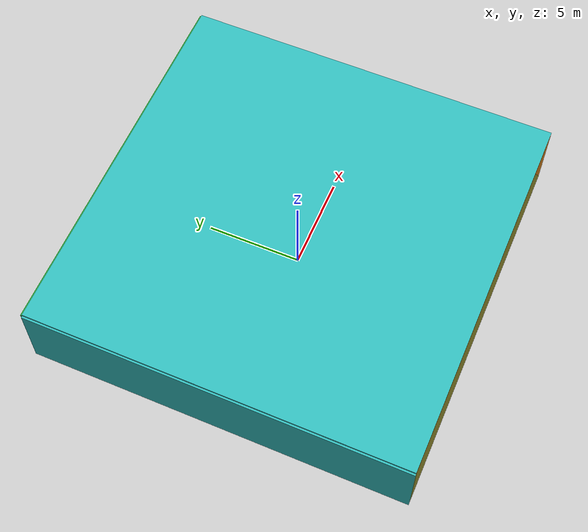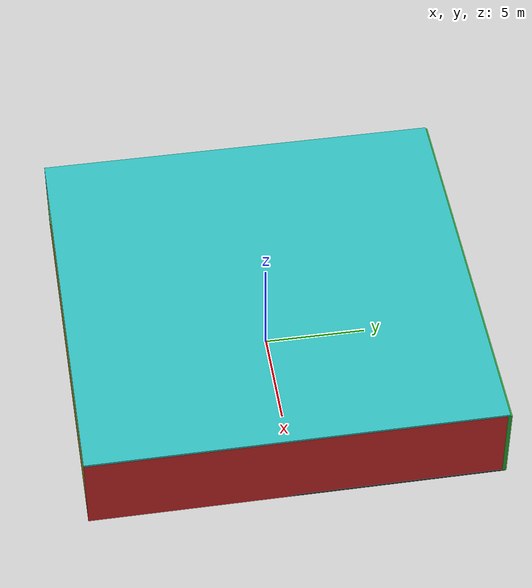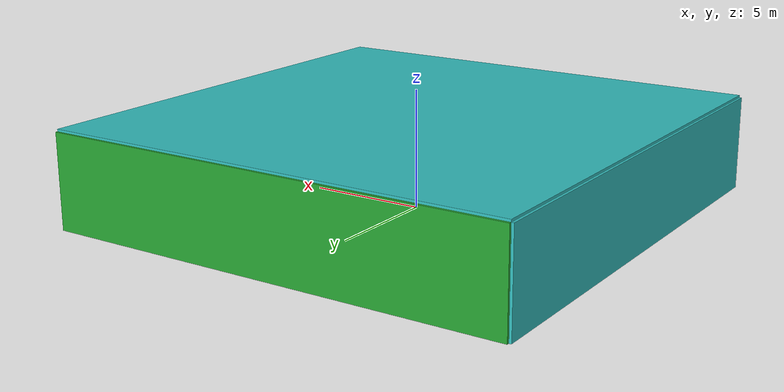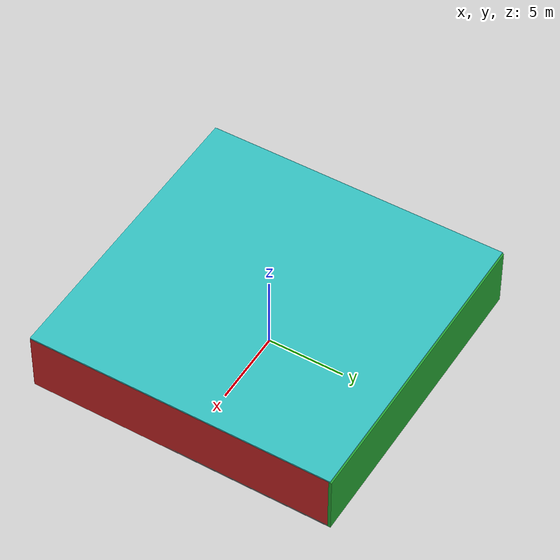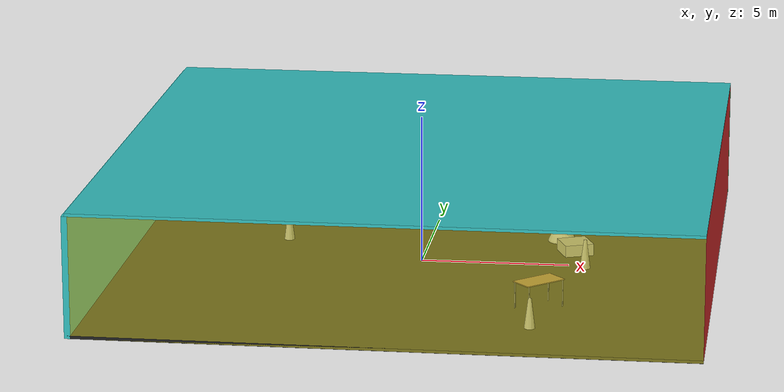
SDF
<sdf version="1.4">
 <world name="default">
  <physics type="ode">
   <max_step_size>0.001</max_step_size>
   <real_time_factor>1</real_time_factor>
   <real_time_update_rate>1000</real_time_update_rate>
   <gravity>0 0 -9.8</gravity>
  </physics>
  <scene><ambient>0.4 0.4 0.4 1</ambient><background>0.7 0.7 0.7 1</background><shadows>1</shadows></scene>
  <model name="Surrounding">
   <static>1</static>
   <link name="Ceiling">
    <collision name="Ceiling_Collision"><geometry><box><size>20 20 0.1</size></box></geometry></collision>
    <visual name="Ceiling_Visual">
     <geometry><box><size>20 20 0.1</size></box></geometry>
     <material>
      <script>
       <uri>file://media/materials/scripts/gazebo.material</uri>
       <name>Gazebo/TurquoiseGlowOutline</name>
      </script>
     </material>
    </visual>
    <pose>0 0 4.05 0 0 0</pose>
   </link>
   <link name="Wall_South">
    <collision name="Wall_South_Collision">
     <geometry><box><size>20 0 4</size></box></geometry>
     <pose>0 0 2 0 -0 0</pose>
    </collision>
    <visual name="Wall_South_Visual">
     <pose>0 0 2 0 -0 0</pose>
     <geometry><box><size>20 0 4</size></box></geometry>
     <material>
      <script>
       <uri>file://media/materials/scripts/gazebo.material</uri>
       <name>Gazebo/YellowTransparent</name>
      </script>
     </material>
    </visual>
    <velocity_decay><linear>0</linear><angular>0</angular></velocity_decay>
    <pose>0 -10 0 0 -0 0</pose>
   </link>
   <link name="Wall_East">
    <collision name="Wall_21_Collision">
     <geometry><box><size>20 0 4</size></box></geometry>
     <pose>0 0 2 0 -0 0</pose>
    </collision>
    <visual name="Wall_21_Visual">
     <pose>0 0 2 0 -0 0</pose>
     <geometry><box><size>20 0 4</size></box></geometry>
     <material>
      <script><uri>file://media/materials/scripts/gazebo.material</uri><name>Gazebo/RedGlow</name></script>
     </material>
    </visual>
    <velocity_decay><linear>0</linear><angular>0</angular></velocity_decay>
    <pose>10 0 0 0 -0 1.5708</pose>
   </link>
   <link name="Wall_North">
    <collision name="Wall_22_Collision">
     <geometry><box><size>20 0.2 4</size></box></geometry>
     <pose>0 0 2 0 -0 0</pose>
    </collision>
    <visual name="Wall_22_Visual">
     <pose>0 0 2 0 -0 0</pose>
     <geometry><box><size>20 0.2 4</size></box></geometry>
     <material>
      <script><uri>file://media/materials/scripts/gazebo.material</uri><name>Gazebo/Green</name></script>
     </material>
    </visual>
    <velocity_decay><linear>0</linear><angular>0</angular></velocity_decay>
    <pose>0 10 0 0 -0 0</pose>
   </link>
   <link name="Wall_West">
    <collision name="Wall_23_Collision">
     <geometry><box><size>20 0.2 4</size></box></geometry>
     <pose>0 0 2 0 -0 0</pose>
    </collision>
    <visual name="Wall_23_Visual">
     <pose>0 0 2 0 -0 0</pose>
     <geometry><box><size>20 0.2 4</size></box></geometry>
     <material>
      <script><uri>file://media/materials/scripts/gazebo.material</uri><name>Gazebo/TurquoiseGlow</name></script>
     </material>
    </visual>
    <velocity_decay><linear>0</linear><angular>0</angular></velocity_decay>
    <pose>-10 0 0 0 0 -1.5708</pose>
   </link>
   <link name="Ground_link">
    <collision name="collision">
     <pose>0 0 .05 0 -0 0</pose>
     <geometry><box><size>20 20 0.1</size></box></geometry>
    </collision>
    <visual name="visual">
     <pose>0 0 .05 0 -0 0</pose>
     <geometry><box><size>20 20 0.1</size></box></geometry>
     <material>
      <script><uri>file://media/materials/scripts/gazebo.material</uri><name>Gazebo/FlatBlack</name></script>
     </material>
    </visual>
   </link>
   <static>1</static>
  </model>
  <spherical_coordinates>
   <surface_model>EARTH_WGS84</surface_model>
   <latitude_deg>0</latitude_deg>
   <longitude_deg>0</longitude_deg>
   <elevation>0</elevation>
   <heading_deg>0</heading_deg>
  </spherical_coordinates>
  <light name="lightball_0" type="diffuse">
   <diffuse>0.8 0.8 0.8 1</diffuse>
   <specular>0.2 0.2 0.2 1</specular>
   <attenuation>
    <range>100</range>
    <constant>0.7</constant>
    <linear>0.01</linear>
    <quadratic>0.001</quadratic>
   </attenuation>
   <direction>-0.5 0.1 -0.9</direction>
   <pose>2.30027423126 -6.75232628945 3.74950761238 0 0 0</pose>
  </light>
  <light name="lightball_1" type="diffuse">
   <diffuse>0.8 0.8 0.8 1</diffuse>
   <specular>0.2 0.2 0.2 1</specular>
   <attenuation>
    <range>100</range>
    <constant>0.7</constant>
    <linear>0.01</linear>
    <quadratic>0.001</quadratic>
   </attenuation>
   <direction>-0.5 0.1 -0.9</direction>
   <pose>-3.80779432656 -5.7320508608 2.36072277281 0 0 0</pose>
  </light>
  <light name="lightball_2" type="diffuse">
   <diffuse>0.8 0.8 0.8 1</diffuse>
   <specular>0.2 0.2 0.2 1</specular>
   <attenuation>
    <range>100</range>
    <constant>0.7</constant>
    <linear>0.01</linear>
    <quadratic>0.001</quadratic>
   </attenuation>
   <direction>-0.5 0.1 -0.9</direction>
   <pose>-4.98012014695 4.69997608881 1.42276633443 0 0 0</pose>
  </light>
  <light name="lightball_3" type="diffuse">
   <diffuse>0.8 0.8 0.8 1</diffuse>
   <specular>0.2 0.2 0.2 1</specular>
   <attenuation>
    <range>100</range>
    <constant>0.7</constant>
    <linear>0.01</linear>
    <quadratic>0.001</quadratic>
   </attenuation>
   <direction>-0.5 0.1 -0.9</direction>
   <pose>5.65206109511 9.66720677695 3.71122607185 0 0 0</pose>
  </light>
  <light name="lightball_4" type="diffuse">
   <diffuse>0.8 0.8 0.8 1</diffuse>
   <specular>0.2 0.2 0.2 1</specular>
   <attenuation>
    <range>100</range>
    <constant>0.7</constant>
    <linear>0.01</linear>
    <quadratic>0.001</quadratic>
   </attenuation>
   <direction>-0.5 0.1 -0.9</direction>
   <pose>8.9558210626 3.58013973619 1.02576565586 0 0 0</pose>
  </light>
  <light name="lightball_5" type="diffuse">
   <diffuse>0.8 0.8 0.8 1</diffuse>
   <specular>0.2 0.2 0.2 1</specular>
   <attenuation>
    <range>100</range>
    <constant>0.7</constant>
    <linear>0.01</linear>
    <quadratic>0.001</quadratic>
   </attenuation>
   <direction>-0.5 0.1 -0.9</direction>
   <pose>7.88344429282 -6.72438451937 1.05455236662 0 0 0</pose>
  </light>
  <light name="lightball_6" type="diffuse">
   <diffuse>0.8 0.8 0.8 1</diffuse>
   <specular>0.2 0.2 0.2 1</specular>
   <attenuation>
    <range>100</range>
    <constant>0.7</constant>
    <linear>0.01</linear>
    <quadratic>0.001</quadratic>
   </attenuation>
   <direction>-0.5 0.1 -0.9</direction>
   <pose>6.96684091187 7.37123510898 3.66862462361 0 0 0</pose>
  </light>
  <light name="lightball_7" type="diffuse">
   <diffuse>0.8 0.8 0.8 1</diffuse>
   <specular>0.2 0.2 0.2 1</specular>
   <attenuation>
    <range>100</range>
    <constant>0.7</constant>
    <linear>0.01</linear>
    <quadratic>0.001</quadratic>
   </attenuation>
   <direction>-0.5 0.1 -0.9</direction>
   <pose>-9.01068937986 7.11127030345 1.89303777015 0 0 0</pose>
  </light>
  <light name="lightball_8" type="diffuse">
   <diffuse>0.8 0.8 0.8 1</diffuse>
   <specular>0.2 0.2 0.2 1</specular>
   <attenuation>
    <range>100</range>
    <constant>0.7</constant>
    <linear>0.01</linear>
    <quadratic>0.001</quadratic>
   </attenuation>
   <direction>-0.5 0.1 -0.9</direction>
   <pose>-6.82821729009 8.22227310842 1.72203113909 0 0 0</pose>
  </light>
  <light name="lightball_9" type="diffuse">
   <diffuse>0.8 0.8 0.8 1</diffuse>
   <specular>0.2 0.2 0.2 1</specular>
   <attenuation>
    <range>100</range>
    <constant>0.7</constant>
    <linear>0.01</linear>
    <quadratic>0.001</quadratic>
   </attenuation>
   <direction>-0.5 0.1 -0.9</direction>
   <pose>6.17242334788 -7.38398773281 1.4743789597 0 0 0</pose>
  </light>
  <light name="lightball_10" type="diffuse">
   <diffuse>0.8 0.8 0.8 1</diffuse>
   <specular>0.2 0.2 0.2 1</specular>
   <attenuation>
    <range>100</range>
    <constant>0.7</constant>
    <linear>0.01</linear>
    <quadratic>0.001</quadratic>
   </attenuation>
   <direction>-0.5 0.1 -0.9</direction>
   <pose>-5.73930101173 -5.28200831325 1.73350441502 0 0 0</pose>
  </light>
  <light name="lightball_11" type="diffuse">
   <diffuse>0.8 0.8 0.8 1</diffuse>
   <specular>0.2 0.2 0.2 1</specular>
   <attenuation>
    <range>100</range>
    <constant>0.7</constant>
    <linear>0.01</linear>
    <quadratic>0.001</quadratic>
   </attenuation>
   <direction>-0.5 0.1 -0.9</direction>
   <pose>-7.89024505588 -5.07705216532 2.70359939541 0 0 0</pose>
  </light>
  <light name="lightball_12" type="diffuse">
   <diffuse>0.8 0.8 0.8 1</diffuse>
   <specular>0.2 0.2 0.2 1</specular>
   <attenuation>
    <range>100</range>
    <constant>0.7</constant>
    <linear>0.01</linear>
    <quadratic>0.001</quadratic>
   </attenuation>
   <direction>-0.5 0.1 -0.9</direction>
   <pose>8.45196375257 5.13414595997 1.69345310469 0 0 0</pose>
  </light>
  <light name="lightball_13" type="diffuse">
   <diffuse>0.8 0.8 0.8 1</diffuse>
   <specular>0.2 0.2 0.2 1</specular>
   <attenuation>
    <range>100</range>
    <constant>0.7</constant>
    <linear>0.01</linear>
    <quadratic>0.001</quadratic>
   </attenuation>
   <direction>-0.5 0.1 -0.9</direction>
   <pose>-4.93642698999 9.25253555147 3.37299044317 0 0 0</pose>
  </light>
  <include><uri>model://cabinet</uri><pose>-8.16876135338 3.88113921544 0 0 0 0.997716191154</pose></include>
  <include>
   <uri>model://construction_cone</uri>
   <pose>-4.82080366294 1.67449655872 0 0 0 1.17535823697</pose>
  </include>
  <include>
   <uri>model://robocup_3Dsim_goal</uri>
   <pose>2.02706264755 4.15027309613 0 0 0 1.76284604359</pose>
  </include>
  <include>
   <uri>model://construction_cone</uri>
   <pose>4.37273839259 -7.36774755459 0 0 0 0.421769548886</pose>
  </include>
  <include><uri>model://table</uri><pose>4.45616807762 -5.1145063393 0 0 0 0.74276706377</pose></include>
  <include>
   <uri>model://construction_cone</uri>
   <pose>5.60139103939 -0.547210590533 0 0 0 1.99633378501</pose>
  </include>
  <include>
   <uri>model://textured_shapes</uri>
   <pose>4.56353220205 2.64076396319 0 0 0 0.385063927196</pose>
  </include>
 </world>
</sdf>

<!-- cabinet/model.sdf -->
<sdf version="1.5">
  <model name="cabinet">
    <static>true</static>
    <link name="cabinet_bottom_plate">
      <inertial>
        <pose>0 0 -1 0 0 0</pose>
        <inertia>
          <ixx>2.050000</ixx>
          <ixy>0</ixy>
          <ixz>0</ixz>
          <iyy>2.050000</iyy>
          <iyz>0</iyz>
          <izz>2.050000</izz>
        </inertia>
        <mass>25.000000</mass>
      </inertial>
      <collision name="cabinet_bottom_plate_geom">
        <pose>0 0 0.010000 0 0 0</pose>
        <geometry>
          <box>
            <size>0.450000 0.450000 0.020000</size>
          </box>
        </geometry>
      </collision>
      <visual name="cabinet_bottom_plate_geom_visual">
        <pose>0 0 0.010000 0 0 0</pose>
        <geometry>
          <box>
            <size>0.450000 0.450000 0.020000</size>
          </box>
        </geometry>
        <material>
          <script>
            <uri>model://media/materials/scripts/gazebo.material</uri>
            <name>Gazebo/Wood</name>
          </script>
        </material>
      </visual>
      <collision name="cabinet_bottom_plate_geom_cabinet_back_plate">
        <pose>0.235000 0 0.510000 0 0 0</pose>
        <geometry>
          <box>
            <size>0.020000 0.450000 1.020000</size>
          </box>
        </geometry>
      </collision>
      <visual name="cabinet_bottom_plate_geom_cabinet_back_plate_visual">
        <pose>0.235000 0 0.510000 0 0 0</pose>
        <geometry>
          <box>
            <size>0.020000 0.450000 1.020000</size>
          </box>
        </geometry>
        <material>
          <script>
            <uri>model://media/materials/scripts/gazebo.material</uri>
            <name>Gazebo/Wood</name>
          </script>
        </material>
      </visual>
      <collision name="cabinet_bottom_plate_geom_cabinet_left_plate">
        <pose>0 0.235000 0.510000 0 0 0</pose>
        <geometry>
          <box>
            <size>0.450000 0.020000 1.020000</size>
          </box>
        </geometry>
      </collision>
      <visual name="cabinet_bottom_plate_geom_cabinet_left_plate_visual">
        <pose>0 0.235000 0.510000 0 0 0</pose>
        <geometry>
          <box>
            <size>0.450000 0.020000 1.020000</size>
          </box>
        </geometry>
        <material>
          <script>
            <uri>model://media/materials/scripts/gazebo.material</uri>
            <name>Gazebo/Wood</name>
          </script>
        </material>
      </visual>
      <collision name="cabinet_bottom_plate_geom_cabinet_middle_plate">
        <pose>0 0 0.510000 0 0 0</pose>
        <geometry>
          <box>
            <size>0.450000 0.450000 0.020000</size>
          </box>
        </geometry>
      </collision>
      <visual name="cabinet_bottom_plate_geom_cabinet_middle_plate_visual">
        <pose>0 0 0.510000 0 0 0</pose>
        <geometry>
          <box>
            <size>0.450000 0.450000 0.020000</size>
          </box>
        </geometry>
        <material>
          <script>
            <uri>model://media/materials/scripts/gazebo.material</uri>
            <name>Gazebo/Wood</name>
          </script>
        </material>
      </visual>
      <collision name="cabinet_bottom_plate_geom_cabinet_right_plate">
        <pose>0 -0.235000 0.510000 0 0 0</pose>
        <geometry>
          <box>
            <size>0.450000 0.020000 1.020000</size>
          </box>
        </geometry>
      </collision>
      <visual name="cabinet_bottom_plate_geom_cabinet_right_plate_visual">
        <pose>0 -0.235000 0.510000 0 0 0</pose>
        <geometry>
          <box>
            <size>0.450000 0.020000 1.020000</size>
          </box>
        </geometry>
        <material>
          <script>
            <uri>model://media/materials/scripts/gazebo.material</uri>
            <name>Gazebo/Wood</name>
          </script>
        </material>
      </visual>
      <collision name="cabinet_bottom_plate_geom_cabinet_top_plate">
        <pose>0 0 1.010000 0 0 0</pose>
        <geometry>
          <box>
            <size>0.450000 0.450000 0.020000</size>
          </box>
        </geometry>
      </collision>
      <visual name="cabinet_bottom_plate_geom_cabinet_top_plate_visual">
        <pose>0 0 1.010000 0 0 0</pose>
        <geometry>
          <box>
            <size>0.450000 0.450000 0.020000</size>
          </box>
        </geometry>
        <material>
          <script>
            <uri>model://media/materials/scripts/gazebo.material</uri>
            <name>Gazebo/Wood</name>
          </script>
        </material>
      </visual>
    </link>
  </model>
</sdf>

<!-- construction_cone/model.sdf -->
<sdf version="1.5">
  <model name="Construction Cone">
    <link name="link">
      <collision name="collision">
        <geometry>
          <mesh>
            <scale>10 10 10</scale>
            <uri>file://isr-testbed/construction_cone/meshes/construction_cone.dae</uri>
          </mesh>
        </geometry>
      </collision>
      <visual name="visual">
        <geometry>
          <mesh>
            <scale>10 10 10</scale>
            <uri>file://isr-testbed/construction_cone/meshes/construction_cone.dae</uri>
          </mesh>
        </geometry>
      </visual>
    </link>
  </model>
</sdf>

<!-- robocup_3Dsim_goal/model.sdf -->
<sdf version="1.5">
  <model name="robocup_3d_goal">
    <static>true</static>
    <link name="left_post">
      <pose>0 1.05 0.45 0 0 0</pose>
      <collision name="collision">
        <geometry>
          <cylinder>
            <radius>0.05</radius>
            <length>0.9</length>
          </cylinder>
        </geometry>
      </collision>
      <visual name="visual">
        <geometry>
          <cylinder>
            <radius>0.05</radius>
            <length>0.9</length>
          </cylinder>
        </geometry>
        <material>
          <script>
            <uri>file://media/materials/scripts/gazebo.material</uri>
            <name>Gazebo/ZincYellow</name>
          </script>
        </material>
      </visual>
    </link>
    <link name="left_support_horiz_lower">
      <pose>0.30 1.05 0.01 0 0 0</pose>
      <collision name="collision">
        <geometry>
          <box>
            <size>0.50 0.02 0.02</size>
          </box>
        </geometry>
      </collision>
      <visual name="visual">
        <geometry>
          <box>
            <size>0.50 0.02 0.02</size>
          </box>
        </geometry>
        <material>
          <script>
            <uri>file://media/materials/scripts/gazebo.material</uri>
            <name>Gazebo/White</name>
          </script>
        </material>
      </visual>
    </link>
    <link name="left_support_horiz_upper">
      <pose>0.30 1.05 0.79 0 0 0</pose>
      <collision name="collision">
        <geometry>
          <box>
            <size>0.50 0.02 0.02</size>
          </box>
        </geometry>
      </collision>
      <visual name="visual">
        <geometry>
          <box>
            <size>0.50 0.02 0.02</size>
          </box>
        </geometry>
        <material>
          <script>
            <uri>file://media/materials/scripts/gazebo.material</uri>
            <name>Gazebo/White</name>
          </script>
        </material>
      </visual>
    </link>
    <link name="left_support_vertical">
      <pose>0.56 1.05 0.4 0 1.5708 0</pose>
      <collision name="collision">
        <geometry>
          <box>
            <size>0.80 0.02 0.02</size>
          </box>
        </geometry>
      </collision>
      <visual name="visual">
        <geometry>
          <box>
            <size>0.80 0.02 0.02</size>
          </box>
        </geometry>
        <material>
          <script>
            <uri>file://media/materials/scripts/gazebo.material</uri>
            <name>Gazebo/White</name>
          </script>
        </material>
      </visual>
    </link>
    <link name="right_support_horiz_lower">
      <pose>0.30 -1.05 0.01 0 0 0</pose>
      <collision name="collision">
        <geometry>
          <box>
            <size>0.50 0.02 0.02</size>
          </box>
        </geometry>
      </collision>
      <visual name="visual">
        <geometry>
          <box>
            <size>0.50 0.02 0.02</size>
          </box>
        </geometry>
        <material>
          <script>
            <uri>file://media/materials/scripts/gazebo.material</uri>
            <name>Gazebo/White</name>
          </script>
        </material>
      </visual>
    </link>
    <link name="right_support_horiz_upper">
      <pose>0.30 -1.05 0.79 0 0 0</pose>
      <collision name="collision">
        <geometry>
          <box>
            <size>0.50 0.02 0.02</size>
          </box>
        </geometry>
      </collision>
      <visual name="visual">
        <geometry>
          <box>
            <size>0.50 0.02 0.02</size>
          </box>
        </geometry>
        <material>
          <script>
            <uri>file://media/materials/scripts/gazebo.material</uri>
            <name>Gazebo/White</name>
          </script>
        </material>
      </visual>
    </link>
    <link name="right_support_vertical">
      <pose>0.56 -1.05 0.4 0 1.5708 0</pose>
      <collision name="collision">
        <geometry>
          <box>
            <size>0.80 0.02 0.02</size>
          </box>
        </geometry>
      </collision>
      <visual name="visual">
        <geometry>
          <box>
            <size>0.80 0.02 0.02</size>
          </box>
        </geometry>
        <material>
          <script>
            <uri>file://media/materials/scripts/gazebo.material</uri>
            <name>Gazebo/White</name>
          </script>
        </material>
      </visual>
    </link>
    <link name="center_support_horiz_lower">
      <pose>0.56 0 0.01 0 1.5708 0</pose>
      <collision name="collision">
        <geometry>
          <box>
            <size>0.02 2.08 0.02</size>
          </box>
        </geometry>
      </collision>
      <visual name="visual">
        <geometry>
          <box>
            <size>0.02 2.08 0.02</size>
          </box>
        </geometry>
        <material>
          <script>
            <uri>file://media/materials/scripts/gazebo.material</uri>
            <name>Gazebo/White</name>
          </script>
        </material>
      </visual>
    </link>
    <link name="center_support_horiz_upper">
      <pose>0.56 0 0.79 0 1.5708 0</pose>
      <collision name="collision">
        <geometry>
          <box>
            <size>0.02 2.08 0.02</size>
          </box>
        </geometry>
      </collision>
      <visual name="visual">
        <geometry>
          <box>
            <size>0.02 2.08 0.02</size>
          </box>
        </geometry>
        <material>
          <script>
            <uri>file://media/materials/scripts/gazebo.material</uri>
            <name>Gazebo/White</name>
          </script>
        </material>
      </visual>
    </link>
    <link name="right_post">
      <pose>0 -1.05 0.45 0 0 0</pose>
      <collision name="collision">
        <geometry>
          <cylinder>
            <radius>0.05</radius>
            <length>0.9</length>
          </cylinder>
        </geometry>
      </collision>
      <visual name="visual">
        <geometry>
          <cylinder>
            <radius>0.05</radius>
            <length>0.9</length>
          </cylinder>
        </geometry>
        <material>
          <script>
            <uri>file://media/materials/scripts/gazebo.material</uri>
            <name>Gazebo/ZincYellow</name>
          </script>
        </material>
      </visual>
    </link>
    <link name="crossbar">
      <pose>0 0 0.85 1.57 1.57 0</pose>
      <collision name="collision">
        <geometry>
          <cylinder>
            <radius>0.05</radius>
            <length>2.0</length>
          </cylinder>
        </geometry>
      </collision>
      <visual name="visual">
        <geometry>
          <cylinder>
            <radius>0.05</radius>
            <length>2.0</length>
          </cylinder>
        </geometry>
        <material>
          <script>
            <uri>file://media/materials/scripts/gazebo.material</uri>
            <name>Gazebo/ZincYellow</name>
          </script>
        </material>
      </visual>
    </link>
    <link name="center_net">
      <pose>0.56 0 0.40 0 0 0</pose>
      <collision name="collision">
        <geometry>
          <box>
            <size>0.01 2.1 0.80</size>
          </box>
        </geometry>
      </collision>
      <visual name="visual">
        <geometry>
          <box>
            <size>0.01 2.1 0.80</size>
          </box>
        </geometry>
        <material>
          <script>
            <uri>model://../model_source/models/robocup09_spl_field/materials/scripts/</uri>
            <uri>model://../model_source/models/robocup09_spl_field/materials/textures/</uri>
            <name>RoboCup/Net</name>
          </script>
        </material>
      </visual>
    </link>
    <link name="left_net">
      <pose>0.30 1.05 0.40 0 0 0</pose>
      <collision name="collision">
        <geometry>
          <box>
            <size>0.50 0.01 0.76</size>
          </box>
        </geometry>
      </collision>
      <visual name="visual">
        <geometry>
          <box>
            <size>0.50 0.01 0.76</size>
          </box>
        </geometry>
        <material>
          <script>
            <uri>model://../model_source/models/robocup09_spl_field/materials/scripts/</uri>
            <uri>model://../model_source/models/robocup09_spl_field/materials/textures/</uri>
            <name>RoboCup/Net</name>
          </script>
        </material>
      </visual>
    </link>
    <link name="right_net">
      <pose>0.30 -1.05 0.40 0 0 0</pose>
      <collision name="collision">
        <geometry>
          <box>
            <size>0.50 0.01 0.76</size>
          </box>
        </geometry>
      </collision>
      <visual name="visual">
        <geometry>
          <box>
            <size>0.50 0.01 0.76</size>
          </box>
        </geometry>
        <material>
          <script>
            <uri>model://../model_source/models/robocup09_spl_field/materials/scripts/</uri>
            <uri>model://../model_source/models/robocup09_spl_field/materials/textures/</uri>
            <name>RoboCup/Net</name>
          </script>
        </material>
      </visual>
    </link>
  </model>
</sdf>

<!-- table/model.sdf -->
<sdf version="1.5">
  <model name="table">
    <static>true</static>
    <link name="link">
      <collision name="surface">
        <pose>0 0 1.0 0 0 0</pose>
        <geometry>
          <box>
            <size>1.5 0.8 0.03</size>
          </box>
        </geometry>
        <surface>
          <friction>
            <ode>
              <mu>0.6</mu>
              <mu2>0.6</mu2>
            </ode>
          </friction>
        </surface>
      </collision>
      <visual name="visual1">
        <pose>0 0 1.0 0 0 0</pose>
        <geometry>
          <box>
            <size>1.5 0.8 0.03</size>
          </box>
        </geometry>
        <material>
          <script>
            <uri>model://media/materials/scripts/gazebo.material</uri>
            <name>Gazebo/Wood</name>
          </script>
        </material>
      </visual>
      <collision name="front_left_leg">
        <pose>0.68 0.38 0.5 0 0 0</pose>
        <geometry>
          <cylinder>
            <radius>0.02</radius>
            <length>1.0</length>
          </cylinder>
        </geometry>
      </collision>
      <visual name="front_left_leg">
        <pose>0.68 0.38 0.5 0 0 0</pose>
        <geometry>
          <cylinder>
            <radius>0.02</radius>
            <length>1.0</length>
          </cylinder>
        </geometry>
        <material>
          <script>
            <uri>model://media/materials/scripts/gazebo.material</uri>
            <name>Gazebo/Grey</name>
          </script>
        </material>
      </visual>
      <collision name="front_right_leg">
        <pose>0.68 -0.38 0.5 0 0 0</pose>
        <geometry>
          <cylinder>
            <radius>0.02</radius>
            <length>1.0</length>
          </cylinder>
        </geometry>
      </collision>
      <visual name="front_right_leg">
        <pose>0.68 -0.38 0.5 0 0 0</pose>
        <geometry>
          <cylinder>
            <radius>0.02</radius>
            <length>1.0</length>
          </cylinder>
        </geometry>
        <material>
          <script>
            <uri>model://media/materials/scripts/gazebo.material</uri>
            <name>Gazebo/Grey</name>
          </script>
        </material>
      </visual>
      <collision name="back_right_leg">
        <pose>-0.68 -0.38 0.5 0 0 0</pose>
        <geometry>
          <cylinder>
            <radius>0.02</radius>
            <length>1.0</length>
          </cylinder>
        </geometry>
      </collision>
      <visual name="back_right_leg">
        <pose>-0.68 -0.38 0.5 0 0 0</pose>
        <geometry>
          <cylinder>
            <radius>0.02</radius>
            <length>1.0</length>
          </cylinder>
        </geometry>
        <material>
          <script>
            <uri>model://media/materials/scripts/gazebo.material</uri>
            <name>Gazebo/Grey</name>
          </script>
        </material>
      </visual>
      <collision name="back_left_leg">
        <pose>-0.68 0.38 0.5 0 0 0</pose>
        <geometry>
          <cylinder>
            <radius>0.02</radius>
            <length>1.0</length>
          </cylinder>
        </geometry>
      </collision>
      <visual name="back_left_leg">
        <pose>-0.68 0.38 0.5 0 0 0</pose>
        <geometry>
          <cylinder>
            <radius>0.02</radius>
            <length>1.0</length>
          </cylinder>
        </geometry>
        <material>
          <script>
            <uri>model://media/materials/scripts/gazebo.material</uri>
            <name>Gazebo/Grey</name>
          </script>
        </material>
      </visual>
    </link>
  </model>
</sdf>

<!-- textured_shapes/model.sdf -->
<sdf version="1.6">
  <model name="textured_shapes">
    <pose>0 0 0.5 0 0 0</pose>
    <link name="box">
      <pose>0 -1.5 0 0 0 0</pose>
      <collision name="collision">
        <geometry>
          <box>
            <size>1 1 1</size>
          </box>
        </geometry>
      </collision>
      <visual name="visual">
        <geometry>
          <box>
            <size>1 1 1</size>
          </box>
        </geometry>
        <material>
          <script>
            <uri>model://../model_source/models/textured_shapes/materials/scripts</uri>
            <uri>model://../model_source/models/textured_shapes/materials/textures</uri>
            <name>TexturedShape/Squares</name>
          </script>
        </material>
      </visual>
    </link>
    <link name="sphere">
      <collision name="collision">
        <geometry>
          <sphere>
            <radius>0.5</radius>
          </sphere>
        </geometry>
      </collision>
      <visual name="visual">
        <geometry>
          <sphere>
            <radius>0.5</radius>
          </sphere>
        </geometry>
        <material>
          <script>
            <uri>model://../model_source/models/textured_shapes/materials/scripts</uri>
            <uri>model://../model_source/models/textured_shapes/materials/textures</uri>
            <name>TexturedShape/Squares</name>
          </script>
        </material>
      </visual>
    </link>
    <link name="cylinder">
      <pose>0 1.5 0 0 0 0</pose>
      <collision name="collision">
        <geometry>
          <cylinder>
            <radius>0.5</radius>
            <length>1</length>
          </cylinder>
        </geometry>
      </collision>
      <visual name="visual">
        <geometry>
          <cylinder>
            <radius>0.5</radius>
            <length>1</length>
          </cylinder>
        </geometry>
        <material>
          <script>
            <uri>model://../model_source/models/textured_shapes/materials/scripts</uri>
            <uri>model://../model_source/models/textured_shapes/materials/textures</uri>
            <name>TexturedShape/Squares</name>
          </script>
        </material>
      </visual>
    </link>
  </model>
</sdf>
